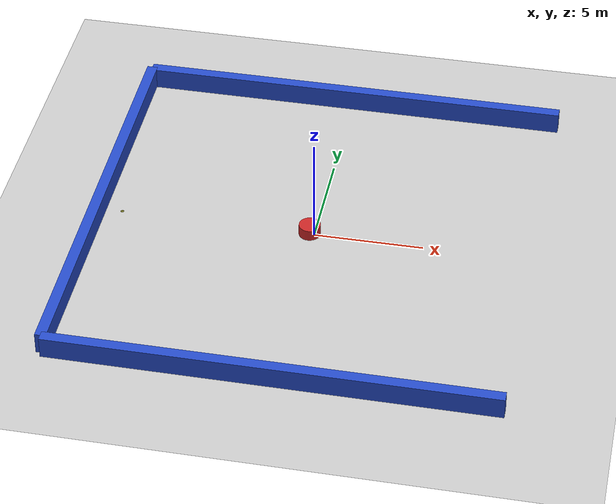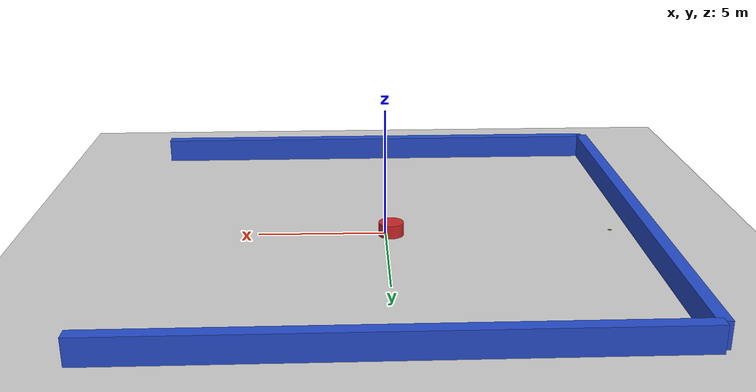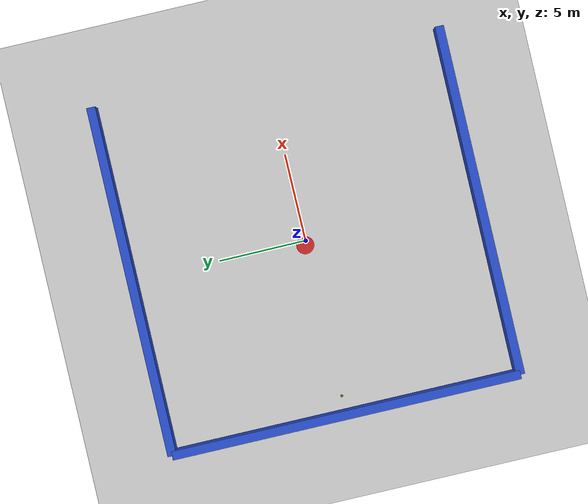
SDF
<sdf version="1.6">
   <world name="default">
      <include>
         <uri>model://ground_plane</uri>
      </include>
      <include>
         <uri>model://sun</uri>
      </include>

    <model name="mediumlibobs_139">
      <static>1</static>
      <pose frame="">-0.225000 0.075000 0.000000 0.000000 0.000000 0.000000</pose>
      <link name="link">
        <inertial>
          <mass>1</mass>
          <inertia>
            <ixx>0.145833</ixx>
            <ixy>0</ixy>
            <ixz>0</ixz>
            <iyy>0.145833</iyy>
            <iyz>0</iyz>
            <izz>0.125</izz>
          </inertia>
        </inertial>
        <collision name="collision">
           <geometry>
            <cylinder>
                <radius>0.5000</radius>
                 <length> 1 </length>
            </cylinder>
          </geometry>
           <surface>
            <contact>
              <ode />
            </contact>
            <bounce />
            <friction>
              <torsional>
                <ode />
              </torsional>
              <ode />
            </friction>
          </surface>
        </collision>
        <visual name="visual">
           <geometry>
            <cylinder>
                <radius>0.5000</radius>
                 <length> 1 </length>
            </cylinder>
          </geometry>
          <material>
            <script>
              <name>Gazebo/Red</name>
              <uri>file://media/materials/scripts/gazebo.material</uri>
            </script>
          </material>
        </visual>
        <self_collide>0</self_collide>
        <kinematic>0</kinematic>
        <gravity>1</gravity>
      </link>
      <plugin name="mediumlibobs_139" filename="mediumlibobs_139.so" />
    </model>

    <model name="hardlibobs_128">
      <static>1</static>
      <pose frame="">-0.225000 0.075000 0.000000 0.000000 0.000000 0.000000</pose>
      <link name="link">
        <inertial>
          <mass>1</mass>
          <inertia>
            <ixx>0.145833</ixx>
            <ixy>0</ixy>
            <ixz>0</ixz>
            <iyy>0.145833</iyy>
            <iyz>0</iyz>
            <izz>0.125</izz>
          </inertia>
        </inertial>
        <collision name="collision">
           <geometry>
            <cylinder>
                <radius>0.5000</radius>
                 <length> 1 </length>
            </cylinder>
          </geometry>
           <surface>
            <contact>
              <ode />
            </contact>
            <bounce />
            <friction>
              <torsional>
                <ode />
              </torsional>
              <ode />
            </friction>
          </surface>
        </collision>
        <visual name="visual">
           <geometry>
            <cylinder>
                <radius>0.5000</radius>
                 <length> 1 </length>
            </cylinder>
          </geometry>
          <material>
            <script>
              <name>Gazebo/Red</name>
              <uri>file://media/materials/scripts/gazebo.material</uri>
            </script>
          </material>
        </visual>
        <self_collide>0</self_collide>
        <kinematic>0</kinematic>
        <gravity>1</gravity>
      </link>
      <plugin name="hardlibobs_128" filename="hardlibobs_128.so" />
    </model>

    <model name="mediumlibobs_9">
      <static>1</static>
      <pose frame="">-0.225000 0.075000 0.000000 0.000000 0.000000 0.000000</pose>
      <link name="link">
        <inertial>
          <mass>1</mass>
          <inertia>
            <ixx>0.145833</ixx>
            <ixy>0</ixy>
            <ixz>0</ixz>
            <iyy>0.145833</iyy>
            <iyz>0</iyz>
            <izz>0.125</izz>
          </inertia>
        </inertial>
        <collision name="collision">
           <geometry>
            <cylinder>
                <radius>0.5000</radius>
                 <length> 1 </length>
            </cylinder>
          </geometry>
           <surface>
            <contact>
              <ode />
            </contact>
            <bounce />
            <friction>
              <torsional>
                <ode />
              </torsional>
              <ode />
            </friction>
          </surface>
        </collision>
        <visual name="visual">
           <geometry>
            <cylinder>
                <radius>0.5000</radius>
                 <length> 1 </length>
            </cylinder>
          </geometry>
          <material>
            <script>
              <name>Gazebo/Red</name>
              <uri>file://media/materials/scripts/gazebo.material</uri>
            </script>
          </material>
        </visual>
        <self_collide>0</self_collide>
        <kinematic>0</kinematic>
        <gravity>1</gravity>
      </link>
      <plugin name="mediumlibobs_9" filename="mediumlibobs_9.so" />
    </model>

    <model name="hardlibobs_141">
      <static>1</static>
      <pose frame="">-0.225000 0.075000 0.000000 0.000000 0.000000 0.000000</pose>
      <link name="link">
        <inertial>
          <mass>1</mass>
          <inertia>
            <ixx>0.145833</ixx>
            <ixy>0</ixy>
            <ixz>0</ixz>
            <iyy>0.145833</iyy>
            <iyz>0</iyz>
            <izz>0.125</izz>
          </inertia>
        </inertial>
        <collision name="collision">
           <geometry>
            <cylinder>
                <radius>0.5000</radius>
                 <length> 1 </length>
            </cylinder>
          </geometry>
           <surface>
            <contact>
              <ode />
            </contact>
            <bounce />
            <friction>
              <torsional>
                <ode />
              </torsional>
              <ode />
            </friction>
          </surface>
        </collision>
        <visual name="visual">
           <geometry>
            <cylinder>
                <radius>0.5000</radius>
                 <length> 1 </length>
            </cylinder>
          </geometry>
          <material>
            <script>
              <name>Gazebo/Red</name>
              <uri>file://media/materials/scripts/gazebo.material</uri>
            </script>
          </material>
        </visual>
        <self_collide>0</self_collide>
        <kinematic>0</kinematic>
        <gravity>1</gravity>
      </link>
      <plugin name="hardlibobs_141" filename="hardlibobs_141.so" />
    </model>

    <model name="mediumlibobs_192">
      <static>1</static>
      <pose frame="">-0.225000 0.075000 0.000000 0.000000 0.000000 0.000000</pose>
      <link name="link">
        <inertial>
          <mass>1</mass>
          <inertia>
            <ixx>0.145833</ixx>
            <ixy>0</ixy>
            <ixz>0</ixz>
            <iyy>0.145833</iyy>
            <iyz>0</iyz>
            <izz>0.125</izz>
          </inertia>
        </inertial>
        <collision name="collision">
           <geometry>
            <cylinder>
                <radius>0.5000</radius>
                 <length> 1 </length>
            </cylinder>
          </geometry>
           <surface>
            <contact>
              <ode />
            </contact>
            <bounce />
            <friction>
              <torsional>
                <ode />
              </torsional>
              <ode />
            </friction>
          </surface>
        </collision>
        <visual name="visual">
           <geometry>
            <cylinder>
                <radius>0.5000</radius>
                 <length> 1 </length>
            </cylinder>
          </geometry>
          <material>
            <script>
              <name>Gazebo/Red</name>
              <uri>file://media/materials/scripts/gazebo.material</uri>
            </script>
          </material>
        </visual>
        <self_collide>0</self_collide>
        <kinematic>0</kinematic>
        <gravity>1</gravity>
      </link>
      <plugin name="mediumlibobs_192" filename="mediumlibobs_192.so" />
    </model>

    <model name="mediumlibobs_57">
      <static>1</static>
      <pose frame="">-0.225000 0.075000 0.000000 0.000000 0.000000 0.000000</pose>
      <link name="link">
        <inertial>
          <mass>1</mass>
          <inertia>
            <ixx>0.145833</ixx>
            <ixy>0</ixy>
            <ixz>0</ixz>
            <iyy>0.145833</iyy>
            <iyz>0</iyz>
            <izz>0.125</izz>
          </inertia>
        </inertial>
        <collision name="collision">
           <geometry>
            <cylinder>
                <radius>0.5000</radius>
                 <length> 1 </length>
            </cylinder>
          </geometry>
           <surface>
            <contact>
              <ode />
            </contact>
            <bounce />
            <friction>
              <torsional>
                <ode />
              </torsional>
              <ode />
            </friction>
          </surface>
        </collision>
        <visual name="visual">
           <geometry>
            <cylinder>
                <radius>0.5000</radius>
                 <length> 1 </length>
            </cylinder>
          </geometry>
          <material>
            <script>
              <name>Gazebo/Red</name>
              <uri>file://media/materials/scripts/gazebo.material</uri>
            </script>
          </material>
        </visual>
        <self_collide>0</self_collide>
        <kinematic>0</kinematic>
        <gravity>1</gravity>
      </link>
      <plugin name="mediumlibobs_57" filename="mediumlibobs_57.so" />
    </model>

      <model name="back_wall">
      <static>1</static>\   <pose frame="">-10 0 .5 0 0 0</pose>        <link name="box_link">

	<collision name="collision">
            <geometry>
              <box>
                <size>.5 20 1</size>
              </box>
            </geometry>
           <surface>
            <contact>
              <ode />
            </contact>
            <bounce />
            <friction>
              <torsional>
                <ode />
              </torsional>
              <ode />
            </friction>
          </surface>
        </collision>

          <visual name="visual">
            <geometry>
              <box>
                <size>.5 20 1</size>
              </box>
            </geometry>
          <material>
                 <script>
                     <name>Gazebo/Blue</name>
                         <uri>file://media/materials/scripts/gazebo.material</uri>
                         </script>
                     </material>
          </visual>
        </link>
      </model>
      <model name="top_wall">
      <static>1</static>
       <pose frame="">0 10 .5 0 0 0</pose>        <link name="box_link">

	<collision name="collision">
           <geometry>
              <box>
                <size>20 .5 1</size>
              </box>
            </geometry>
           <surface>
            <contact>
              <ode />
            </contact>
            <bounce />
            <friction>
              <torsional>
                <ode />
              </torsional>
              <ode />
            </friction>
          </surface>
        </collision>
          <visual name="visual">
            <geometry>
              <box>
                <size>20 .5 1</size>
              </box>
            </geometry>
          <material>
                 <script>
                     <name>Gazebo/Blue</name>
                         <uri>file://media/materials/scripts/gazebo.material</uri>
                         </script>
                     </material>
          </visual>
        </link>
      </model>
      <model name="bottom_wall">
      <static>1</static>
       <pose frame="">0 -10 .5 0 0 0</pose>        <link name="box_link">
	<collision name="collision">
            <geometry>
              <box>
                <size>20 .5 1</size>
              </box>
            </geometry>
           <surface>
            <contact>
              <ode />
            </contact>
            <bounce />
            <friction>
              <torsional>
                <ode />
              </torsional>
              <ode />
            </friction>
          </surface>
        </collision>
          <visual name="visual">
            <geometry>
              <box>
                <size>20 .5 1</size>
              </box>
            </geometry>
          <material>
                 <script>
                     <name>Gazebo/Blue</name>
                         <uri>file://media/materials/scripts/gazebo.material</uri>
                         </script>
                     </material>
          </visual>
        </link>
      </model>
   <model name="goal"><static>1</static><pose frame="">-9.00000 0.000000 0.000000 0.000000 0.000000 0.000000</pose><link name="link"><inertial><mass>1</mass><inertia><ixx>0.145833</ixx><ixy>0</ixy><ixz>0</ixz><iyy>0.145833</iyy><iyz>0</iyz><izz>0.125</izz></inertia></inertial><collision name="collision"><geometry><cylinder><radius>0.075000</radius><length>1</length></cylinder></geometry><max_contacts>10</max_contacts><surface><contact><ode /></contact><bounce /><friction><torsional><ode /></torsional><ode /></friction></surface></collision><visual name="visual"><geometry><cylinder><radius>0.075000</radius><length>0.001</length></cylinder></geometry><material><ambient>0 1 0 1</ambient><diffuse>0.4 0.4 0.1 1</diffuse></material><material><script><name>Gazebo/Grey</name><uri>file://media/materials/scripts/gazebo.material</uri></script></material></visual><self_collide>0</self_collide><kinematic>0</kinematic><gravity>0</gravity></link></model></world>
</sdf>
